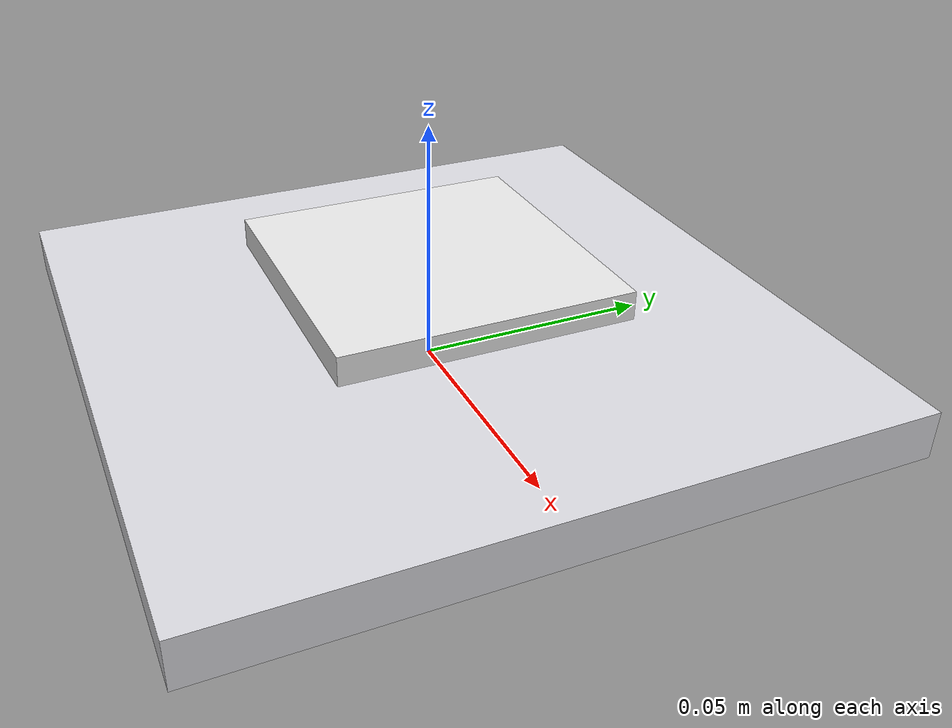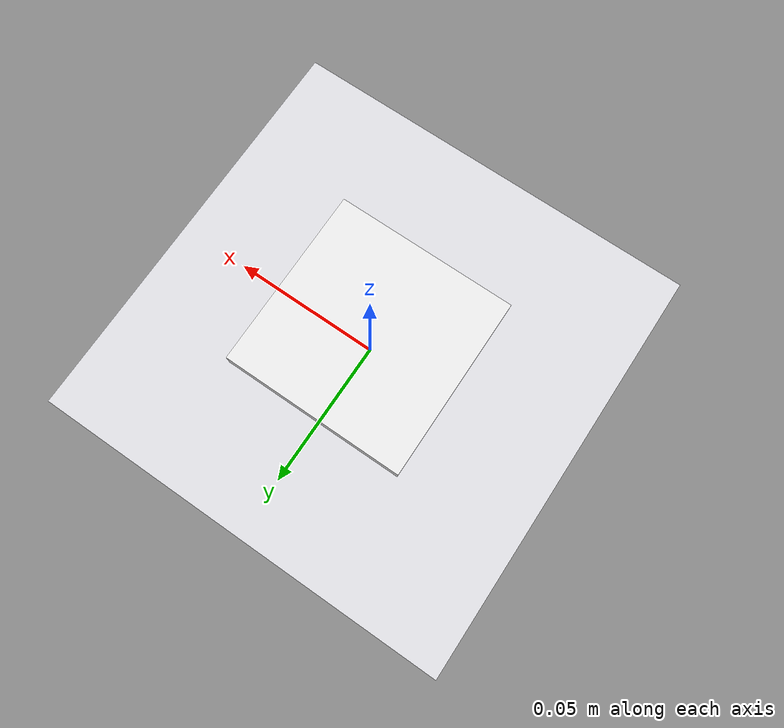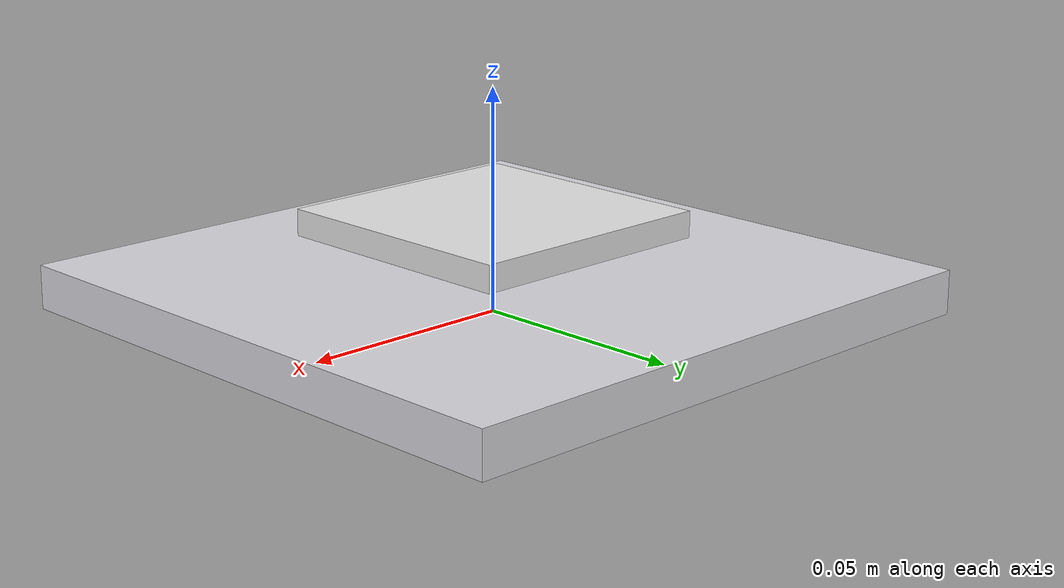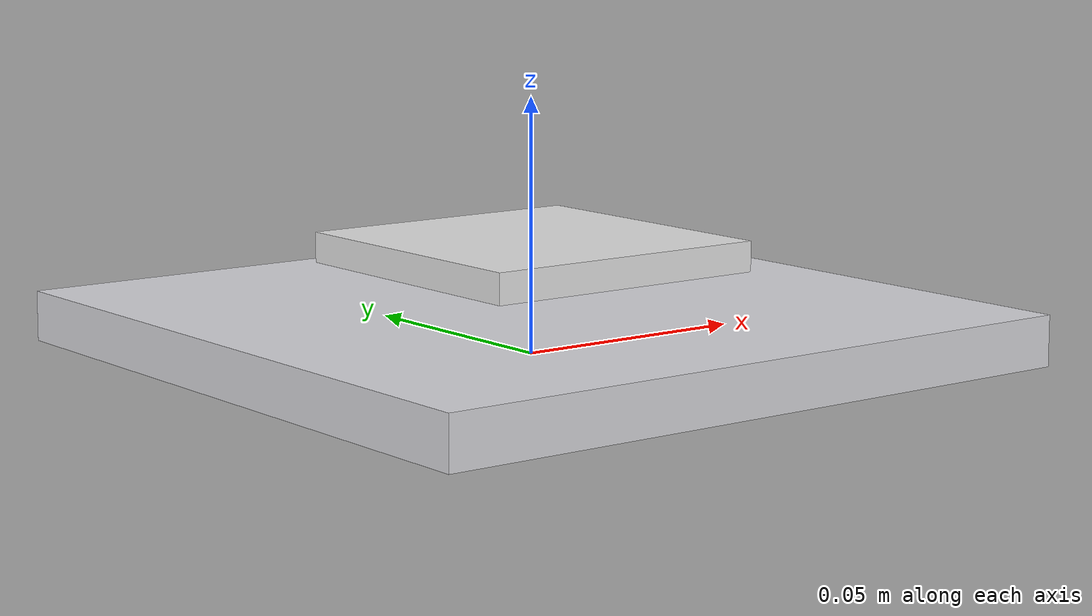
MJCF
<?xml version="1.0" encoding="utf-8"?>
<mujoco model="moisture_wicking_tester">
  <compiler angle="radian" autolimits="true"/>
  <default>
    <default class="body"><geom contype="1" conaffinity="1"/></default>
  </default>
  <worldbody>
    <body name="base">
      <geom type="box" size="0.07 0.07 0.005" pos="0 0 0.005" rgba="0.85 0.85 0.87 1" class="body"/>
      <body name="sample_holder" pos="0 0 0.02">
        <joint name="sample_holder_joint" type="slide" axis="1 0 0" range="-0.04 0.04" damping="1.0" frictionloss="0.3"/>
  <geom type="box" size="0.03 0.03 0.003" pos="0 0 0" rgba="0.9 0.9 0.9 1" class="body"/>
      </body>
    </body>
  </worldbody>
</mujoco>
